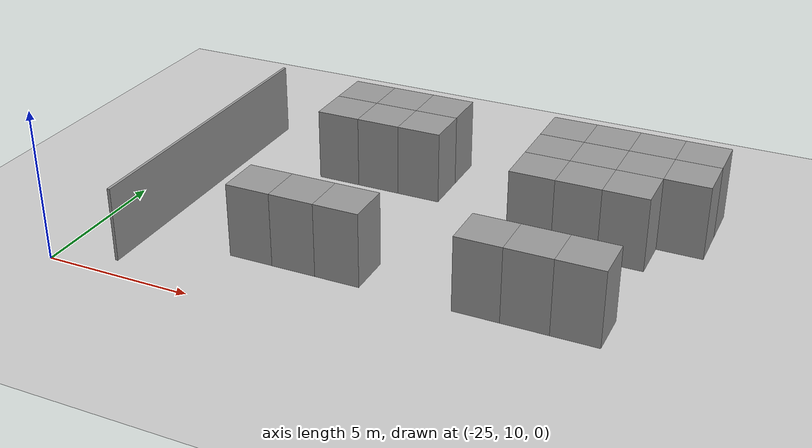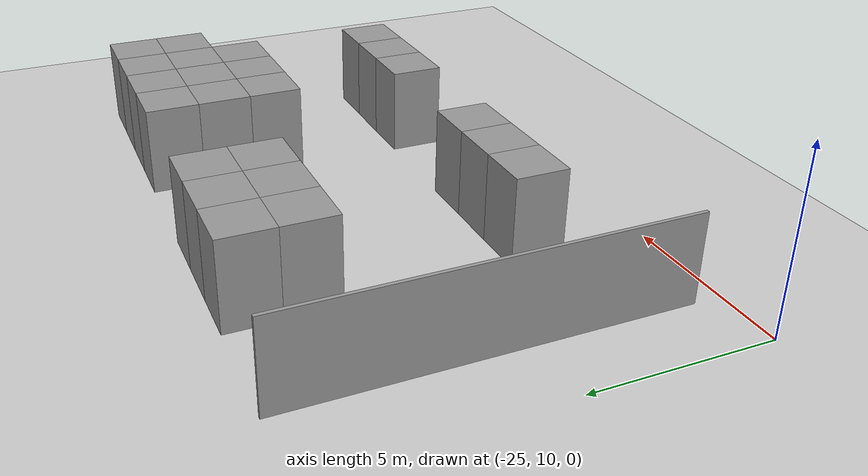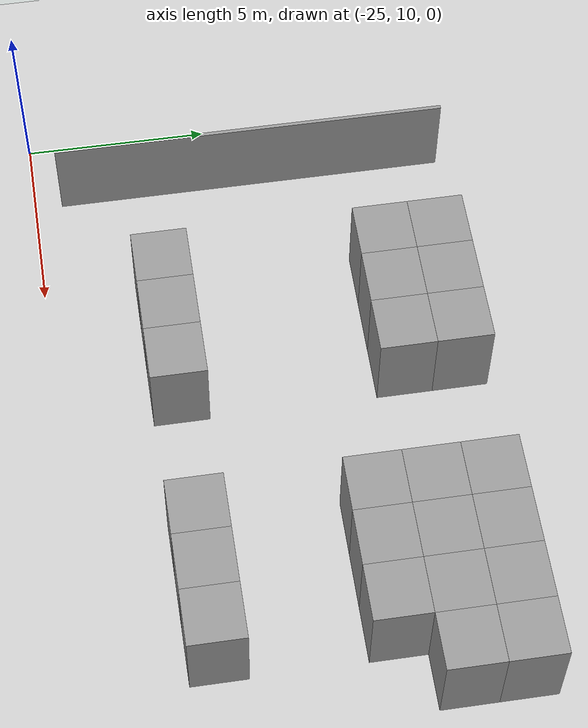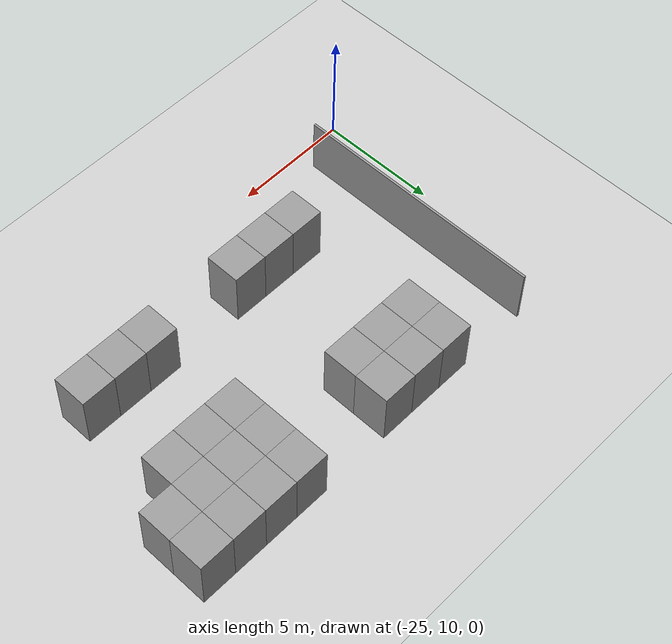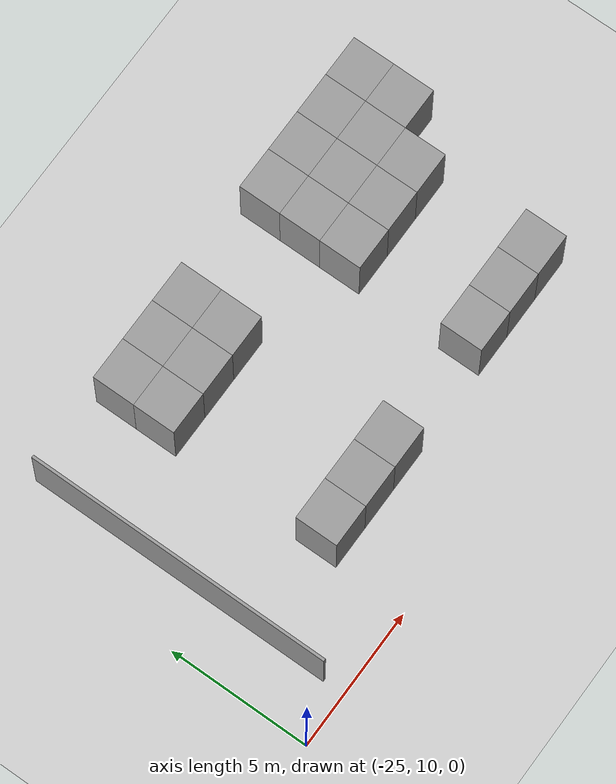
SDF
<sdf version="1.6">
 <world name="default">
  <model name="ground_plane">
   <static>1</static>
   <link name="link">
    <collision name="collision">
     <geometry><plane><normal>0 0 1</normal><size>100 100</size></plane></geometry>
     <surface><friction><ode><mu>100</mu><mu2>50</mu2></ode></friction></surface>
    </collision>
    <visual name="visual">
     <cast_shadows>0</cast_shadows>
     <geometry><plane><normal>0 0 1</normal><size>100 100</size></plane></geometry>
     <material>
      <script><uri>file://media/materials/scripts/gazebo.material</uri><name>Gazebo/Grey</name></script>
     </material>
    </visual>
   </link>
  </model>
  <model name="wall_1.5_1.5_78">
   <link name="Wall_2">
    <inertial>
     <mass>10</mass>
     <inertia><ixx>1</ixx><ixy>0</ixy><ixz>0</ixz><iyy>1</iyy><iyz>0</iyz><izz>1</izz></inertia>
    </inertial>
    <visual name="Wall_2_Visual">
     <pose>0 0 1.25 0 -0 0</pose>
     <geometry><box><size>1.5 1.5 2.5</size></box></geometry>
     <material>
      <script><uri>file://media/materials/scripts/gazebo.material</uri><name>Gazebo/Grey</name></script>
      <ambient>1 1 1 1</ambient>
      <diffuse>0.7 0.7 0.7 1</diffuse>
      <specular>0.01 0.01 0.01 1</specular>
      <emissive>0 0 0 1</emissive>
      <shader type="vertex"><normal_map>__default__</normal_map></shader>
     </material>
    </visual>
    <collision name="Wall_2_Collision">
     <pose>0 0 1.25 0 -0 0</pose>
     <geometry><box><size>1.5 1.5 2.5</size></box></geometry>
     <surface>
      <friction>
       <ode><mu>1</mu><mu2>1</mu2><fdir1>0 0 0</fdir1><slip1>0</slip1><slip2>0</slip2></ode>
       <torsional>
        <coefficient>1</coefficient>
        <patch_radius>0</patch_radius>
        <surface_radius>0</surface_radius>
        <use_patch_radius>1</use_patch_radius>
        <ode><slip>0</slip></ode>
       </torsional>
      </friction>
      <bounce><restitution_coefficient>0</restitution_coefficient><threshold>1e+06</threshold></bounce>
      <contact>
       <collide_without_contact>0</collide_without_contact>
       <collide_without_contact_bitmask>1</collide_without_contact_bitmask>
       <collide_bitmask>1</collide_bitmask>
       <ode>
        <soft_cfm>0</soft_cfm>
        <soft_erp>0.2</soft_erp>
        <kp>1e+13</kp>
        <kd>1</kd>
        <max_vel>0.01</max_vel>
        <min_depth>0</min_depth>
       </ode>
       <bullet>
        <split_impulse>1</split_impulse>
        <split_impulse_penetration_threshold>-0.01</split_impulse_penetration_threshold>
        <soft_cfm>0</soft_cfm>
        <soft_erp>0.2</soft_erp>
        <kp>1e+13</kp>
        <kd>1</kd>
       </bullet>
      </contact>
     </surface>
    </collision>
   </link>
   <static>1</static>
   <pose>-7.25 20.75 0 0 -0 0</pose>
  </model>
  <model name="wall_1.5_1.5_79">
   <link name="Wall_2">
    <inertial>
     <mass>10</mass>
     <inertia><ixx>1</ixx><ixy>0</ixy><ixz>0</ixz><iyy>1</iyy><iyz>0</iyz><izz>1</izz></inertia>
    </inertial>
    <visual name="Wall_2_Visual">
     <pose>0 0 1.25 0 -0 0</pose>
     <geometry><box><size>1.5 1.5 2.5</size></box></geometry>
     <material>
      <script><uri>file://media/materials/scripts/gazebo.material</uri><name>Gazebo/Grey</name></script>
      <ambient>1 1 1 1</ambient>
      <diffuse>0.7 0.7 0.7 1</diffuse>
      <specular>0.01 0.01 0.01 1</specular>
      <emissive>0 0 0 1</emissive>
      <shader type="vertex"><normal_map>__default__</normal_map></shader>
     </material>
    </visual>
    <collision name="Wall_2_Collision">
     <pose>0 0 1.25 0 -0 0</pose>
     <geometry><box><size>1.5 1.5 2.5</size></box></geometry>
     <surface>
      <friction>
       <ode><mu>1</mu><mu2>1</mu2><fdir1>0 0 0</fdir1><slip1>0</slip1><slip2>0</slip2></ode>
       <torsional>
        <coefficient>1</coefficient>
        <patch_radius>0</patch_radius>
        <surface_radius>0</surface_radius>
        <use_patch_radius>1</use_patch_radius>
        <ode><slip>0</slip></ode>
       </torsional>
      </friction>
      <bounce><restitution_coefficient>0</restitution_coefficient><threshold>1e+06</threshold></bounce>
      <contact>
       <collide_without_contact>0</collide_without_contact>
       <collide_without_contact_bitmask>1</collide_without_contact_bitmask>
       <collide_bitmask>1</collide_bitmask>
       <ode>
        <soft_cfm>0</soft_cfm>
        <soft_erp>0.2</soft_erp>
        <kp>1e+13</kp>
        <kd>1</kd>
        <max_vel>0.01</max_vel>
        <min_depth>0</min_depth>
       </ode>
       <bullet>
        <split_impulse>1</split_impulse>
        <split_impulse_penetration_threshold>-0.01</split_impulse_penetration_threshold>
        <soft_cfm>0</soft_cfm>
        <soft_erp>0.2</soft_erp>
        <kp>1e+13</kp>
        <kd>1</kd>
       </bullet>
      </contact>
     </surface>
    </collision>
   </link>
   <static>1</static>
   <pose>-8.75 20.75 0 0 -0 0</pose>
  </model>
  <model name="wall_1.5_1.5_80">
   <link name="Wall_2">
    <inertial>
     <mass>10</mass>
     <inertia><ixx>1</ixx><ixy>0</ixy><ixz>0</ixz><iyy>1</iyy><iyz>0</iyz><izz>1</izz></inertia>
    </inertial>
    <visual name="Wall_2_Visual">
     <pose>0 0 1.25 0 -0 0</pose>
     <geometry><box><size>1.5 1.5 2.5</size></box></geometry>
     <material>
      <script><uri>file://media/materials/scripts/gazebo.material</uri><name>Gazebo/Grey</name></script>
      <ambient>1 1 1 1</ambient>
      <diffuse>0.7 0.7 0.7 1</diffuse>
      <specular>0.01 0.01 0.01 1</specular>
      <emissive>0 0 0 1</emissive>
      <shader type="vertex"><normal_map>__default__</normal_map></shader>
     </material>
    </visual>
    <collision name="Wall_2_Collision">
     <pose>0 0 1.25 0 -0 0</pose>
     <geometry><box><size>1.5 1.5 2.5</size></box></geometry>
     <surface>
      <friction>
       <ode><mu>1</mu><mu2>1</mu2><fdir1>0 0 0</fdir1><slip1>0</slip1><slip2>0</slip2></ode>
       <torsional>
        <coefficient>1</coefficient>
        <patch_radius>0</patch_radius>
        <surface_radius>0</surface_radius>
        <use_patch_radius>1</use_patch_radius>
        <ode><slip>0</slip></ode>
       </torsional>
      </friction>
      <bounce><restitution_coefficient>0</restitution_coefficient><threshold>1e+06</threshold></bounce>
      <contact>
       <collide_without_contact>0</collide_without_contact>
       <collide_without_contact_bitmask>1</collide_without_contact_bitmask>
       <collide_bitmask>1</collide_bitmask>
       <ode>
        <soft_cfm>0</soft_cfm>
        <soft_erp>0.2</soft_erp>
        <kp>1e+13</kp>
        <kd>1</kd>
        <max_vel>0.01</max_vel>
        <min_depth>0</min_depth>
       </ode>
       <bullet>
        <split_impulse>1</split_impulse>
        <split_impulse_penetration_threshold>-0.01</split_impulse_penetration_threshold>
        <soft_cfm>0</soft_cfm>
        <soft_erp>0.2</soft_erp>
        <kp>1e+13</kp>
        <kd>1</kd>
       </bullet>
      </contact>
     </surface>
    </collision>
   </link>
   <static>1</static>
   <pose>-10.25 20.75 0 0 -0 0</pose>
  </model>
  <model name="wall_1.5_1.5_81">
   <link name="Wall_2">
    <inertial>
     <mass>10</mass>
     <inertia><ixx>1</ixx><ixy>0</ixy><ixz>0</ixz><iyy>1</iyy><iyz>0</iyz><izz>1</izz></inertia>
    </inertial>
    <visual name="Wall_2_Visual">
     <pose>0 0 1.25 0 -0 0</pose>
     <geometry><box><size>1.5 1.5 2.5</size></box></geometry>
     <material>
      <script><uri>file://media/materials/scripts/gazebo.material</uri><name>Gazebo/Grey</name></script>
      <ambient>1 1 1 1</ambient>
      <diffuse>0.7 0.7 0.7 1</diffuse>
      <specular>0.01 0.01 0.01 1</specular>
      <emissive>0 0 0 1</emissive>
      <shader type="vertex"><normal_map>__default__</normal_map></shader>
     </material>
    </visual>
    <collision name="Wall_2_Collision">
     <pose>0 0 1.25 0 -0 0</pose>
     <geometry><box><size>1.5 1.5 2.5</size></box></geometry>
     <surface>
      <friction>
       <ode><mu>1</mu><mu2>1</mu2><fdir1>0 0 0</fdir1><slip1>0</slip1><slip2>0</slip2></ode>
       <torsional>
        <coefficient>1</coefficient>
        <patch_radius>0</patch_radius>
        <surface_radius>0</surface_radius>
        <use_patch_radius>1</use_patch_radius>
        <ode><slip>0</slip></ode>
       </torsional>
      </friction>
      <bounce><restitution_coefficient>0</restitution_coefficient><threshold>1e+06</threshold></bounce>
      <contact>
       <collide_without_contact>0</collide_without_contact>
       <collide_without_contact_bitmask>1</collide_without_contact_bitmask>
       <collide_bitmask>1</collide_bitmask>
       <ode>
        <soft_cfm>0</soft_cfm>
        <soft_erp>0.2</soft_erp>
        <kp>1e+13</kp>
        <kd>1</kd>
        <max_vel>0.01</max_vel>
        <min_depth>0</min_depth>
       </ode>
       <bullet>
        <split_impulse>1</split_impulse>
        <split_impulse_penetration_threshold>-0.01</split_impulse_penetration_threshold>
        <soft_cfm>0</soft_cfm>
        <soft_erp>0.2</soft_erp>
        <kp>1e+13</kp>
        <kd>1</kd>
       </bullet>
      </contact>
     </surface>
    </collision>
   </link>
   <static>1</static>
   <pose>-11.75 20.75 0 0 -0 0</pose>
  </model>
  <model name="wall_1.5_1.5_86">
   <link name="Wall_2">
    <inertial>
     <mass>10</mass>
     <inertia><ixx>1</ixx><ixy>0</ixy><ixz>0</ixz><iyy>1</iyy><iyz>0</iyz><izz>1</izz></inertia>
    </inertial>
    <visual name="Wall_2_Visual">
     <pose>0 0 1.25 0 -0 0</pose>
     <geometry><box><size>1.5 1.5 2.5</size></box></geometry>
     <material>
      <script><uri>file://media/materials/scripts/gazebo.material</uri><name>Gazebo/Grey</name></script>
      <ambient>1 1 1 1</ambient>
      <diffuse>0.7 0.7 0.7 1</diffuse>
      <specular>0.01 0.01 0.01 1</specular>
      <emissive>0 0 0 1</emissive>
      <shader type="vertex"><normal_map>__default__</normal_map></shader>
     </material>
    </visual>
    <collision name="Wall_2_Collision">
     <pose>0 0 1.25 0 -0 0</pose>
     <geometry><box><size>1.5 1.5 2.5</size></box></geometry>
     <surface>
      <friction>
       <ode><mu>1</mu><mu2>1</mu2><fdir1>0 0 0</fdir1><slip1>0</slip1><slip2>0</slip2></ode>
       <torsional>
        <coefficient>1</coefficient>
        <patch_radius>0</patch_radius>
        <surface_radius>0</surface_radius>
        <use_patch_radius>1</use_patch_radius>
        <ode><slip>0</slip></ode>
       </torsional>
      </friction>
      <bounce><restitution_coefficient>0</restitution_coefficient><threshold>1e+06</threshold></bounce>
      <contact>
       <collide_without_contact>0</collide_without_contact>
       <collide_without_contact_bitmask>1</collide_without_contact_bitmask>
       <collide_bitmask>1</collide_bitmask>
       <ode>
        <soft_cfm>0</soft_cfm>
        <soft_erp>0.2</soft_erp>
        <kp>1e+13</kp>
        <kd>1</kd>
        <max_vel>0.01</max_vel>
        <min_depth>0</min_depth>
       </ode>
       <bullet>
        <split_impulse>1</split_impulse>
        <split_impulse_penetration_threshold>-0.01</split_impulse_penetration_threshold>
        <soft_cfm>0</soft_cfm>
        <soft_erp>0.2</soft_erp>
        <kp>1e+13</kp>
        <kd>1</kd>
       </bullet>
      </contact>
     </surface>
    </collision>
   </link>
   <static>1</static>
   <pose>-11.75 17.75 0 0 -0 0</pose>
  </model>
  <model name="wall_1.5_1.5_87">
   <link name="Wall_2">
    <inertial>
     <mass>10</mass>
     <inertia><ixx>1</ixx><ixy>0</ixy><ixz>0</ixz><iyy>1</iyy><iyz>0</iyz><izz>1</izz></inertia>
    </inertial>
    <visual name="Wall_2_Visual">
     <pose>0 0 1.25 0 -0 0</pose>
     <geometry><box><size>1.5 1.5 2.5</size></box></geometry>
     <material>
      <script><uri>file://media/materials/scripts/gazebo.material</uri><name>Gazebo/Grey</name></script>
      <ambient>1 1 1 1</ambient>
      <diffuse>0.7 0.7 0.7 1</diffuse>
      <specular>0.01 0.01 0.01 1</specular>
      <emissive>0 0 0 1</emissive>
      <shader type="vertex"><normal_map>__default__</normal_map></shader>
     </material>
    </visual>
    <collision name="Wall_2_Collision">
     <pose>0 0 1.25 0 -0 0</pose>
     <geometry><box><size>1.5 1.5 2.5</size></box></geometry>
     <surface>
      <friction>
       <ode><mu>1</mu><mu2>1</mu2><fdir1>0 0 0</fdir1><slip1>0</slip1><slip2>0</slip2></ode>
       <torsional>
        <coefficient>1</coefficient>
        <patch_radius>0</patch_radius>
        <surface_radius>0</surface_radius>
        <use_patch_radius>1</use_patch_radius>
        <ode><slip>0</slip></ode>
       </torsional>
      </friction>
      <bounce><restitution_coefficient>0</restitution_coefficient><threshold>1e+06</threshold></bounce>
      <contact>
       <collide_without_contact>0</collide_without_contact>
       <collide_without_contact_bitmask>1</collide_without_contact_bitmask>
       <collide_bitmask>1</collide_bitmask>
       <ode>
        <soft_cfm>0</soft_cfm>
        <soft_erp>0.2</soft_erp>
        <kp>1e+13</kp>
        <kd>1</kd>
        <max_vel>0.01</max_vel>
        <min_depth>0</min_depth>
       </ode>
       <bullet>
        <split_impulse>1</split_impulse>
        <split_impulse_penetration_threshold>-0.01</split_impulse_penetration_threshold>
        <soft_cfm>0</soft_cfm>
        <soft_erp>0.2</soft_erp>
        <kp>1e+13</kp>
        <kd>1</kd>
       </bullet>
      </contact>
     </surface>
    </collision>
   </link>
   <static>1</static>
   <pose>-10.25 17.75 0 0 -0 0</pose>
  </model>
  <model name="wall_1.5_1.5_88">
   <link name="Wall_2">
    <inertial>
     <mass>10</mass>
     <inertia><ixx>1</ixx><ixy>0</ixy><ixz>0</ixz><iyy>1</iyy><iyz>0</iyz><izz>1</izz></inertia>
    </inertial>
    <visual name="Wall_2_Visual">
     <pose>0 0 1.25 0 -0 0</pose>
     <geometry><box><size>1.5 1.5 2.5</size></box></geometry>
     <material>
      <script><uri>file://media/materials/scripts/gazebo.material</uri><name>Gazebo/Grey</name></script>
      <ambient>1 1 1 1</ambient>
      <diffuse>0.7 0.7 0.7 1</diffuse>
      <specular>0.01 0.01 0.01 1</specular>
      <emissive>0 0 0 1</emissive>
      <shader type="vertex"><normal_map>__default__</normal_map></shader>
     </material>
    </visual>
    <collision name="Wall_2_Collision">
     <pose>0 0 1.25 0 -0 0</pose>
     <geometry><box><size>1.5 1.5 2.5</size></box></geometry>
     <surface>
      <friction>
       <ode><mu>1</mu><mu2>1</mu2><fdir1>0 0 0</fdir1><slip1>0</slip1><slip2>0</slip2></ode>
       <torsional>
        <coefficient>1</coefficient>
        <patch_radius>0</patch_radius>
        <surface_radius>0</surface_radius>
        <use_patch_radius>1</use_patch_radius>
        <ode><slip>0</slip></ode>
       </torsional>
      </friction>
      <bounce><restitution_coefficient>0</restitution_coefficient><threshold>1e+06</threshold></bounce>
      <contact>
       <collide_without_contact>0</collide_without_contact>
       <collide_without_contact_bitmask>1</collide_without_contact_bitmask>
       <collide_bitmask>1</collide_bitmask>
       <ode>
        <soft_cfm>0</soft_cfm>
        <soft_erp>0.2</soft_erp>
        <kp>1e+13</kp>
        <kd>1</kd>
        <max_vel>0.01</max_vel>
        <min_depth>0</min_depth>
       </ode>
       <bullet>
        <split_impulse>1</split_impulse>
        <split_impulse_penetration_threshold>-0.01</split_impulse_penetration_threshold>
        <soft_cfm>0</soft_cfm>
        <soft_erp>0.2</soft_erp>
        <kp>1e+13</kp>
        <kd>1</kd>
       </bullet>
      </contact>
     </surface>
    </collision>
   </link>
   <static>1</static>
   <pose>-8.75 17.75 0 0 -0 0</pose>
  </model>
  <model name="wall_1.5_1.5_91">
   <link name="Wall_2">
    <inertial>
     <mass>10</mass>
     <inertia><ixx>1</ixx><ixy>0</ixy><ixz>0</ixz><iyy>1</iyy><iyz>0</iyz><izz>1</izz></inertia>
    </inertial>
    <visual name="Wall_2_Visual">
     <pose>0 0 1.25 0 -0 0</pose>
     <geometry><box><size>1.5 1.5 2.5</size></box></geometry>
     <material>
      <script><uri>file://media/materials/scripts/gazebo.material</uri><name>Gazebo/Grey</name></script>
      <ambient>1 1 1 1</ambient>
      <diffuse>0.7 0.7 0.7 1</diffuse>
      <specular>0.01 0.01 0.01 1</specular>
      <emissive>0 0 0 1</emissive>
      <shader type="vertex"><normal_map>__default__</normal_map></shader>
     </material>
    </visual>
    <collision name="Wall_2_Collision">
     <pose>0 0 1.25 0 -0 0</pose>
     <geometry><box><size>1.5 1.5 2.5</size></box></geometry>
     <surface>
      <friction>
       <ode><mu>1</mu><mu2>1</mu2><fdir1>0 0 0</fdir1><slip1>0</slip1><slip2>0</slip2></ode>
       <torsional>
        <coefficient>1</coefficient>
        <patch_radius>0</patch_radius>
        <surface_radius>0</surface_radius>
        <use_patch_radius>1</use_patch_radius>
        <ode><slip>0</slip></ode>
       </torsional>
      </friction>
      <bounce><restitution_coefficient>0</restitution_coefficient><threshold>1e+06</threshold></bounce>
      <contact>
       <collide_without_contact>0</collide_without_contact>
       <collide_without_contact_bitmask>1</collide_without_contact_bitmask>
       <collide_bitmask>1</collide_bitmask>
       <ode>
        <soft_cfm>0</soft_cfm>
        <soft_erp>0.2</soft_erp>
        <kp>1e+13</kp>
        <kd>1</kd>
        <max_vel>0.01</max_vel>
        <min_depth>0</min_depth>
       </ode>
       <bullet>
        <split_impulse>1</split_impulse>
        <split_impulse_penetration_threshold>-0.01</split_impulse_penetration_threshold>
        <soft_cfm>0</soft_cfm>
        <soft_erp>0.2</soft_erp>
        <kp>1e+13</kp>
        <kd>1</kd>
       </bullet>
      </contact>
     </surface>
    </collision>
   </link>
   <static>1</static>
   <pose>-7.25 19.25 0 0 -0 0</pose>
  </model>
  <model name="wall_1.5_1.5_92">
   <link name="Wall_2">
    <inertial>
     <mass>10</mass>
     <inertia><ixx>1</ixx><ixy>0</ixy><ixz>0</ixz><iyy>1</iyy><iyz>0</iyz><izz>1</izz></inertia>
    </inertial>
    <visual name="Wall_2_Visual">
     <pose>0 0 1.25 0 -0 0</pose>
     <geometry><box><size>1.5 1.5 2.5</size></box></geometry>
     <material>
      <script><uri>file://media/materials/scripts/gazebo.material</uri><name>Gazebo/Grey</name></script>
      <ambient>1 1 1 1</ambient>
      <diffuse>0.7 0.7 0.7 1</diffuse>
      <specular>0.01 0.01 0.01 1</specular>
      <emissive>0 0 0 1</emissive>
      <shader type="vertex"><normal_map>__default__</normal_map></shader>
     </material>
    </visual>
    <collision name="Wall_2_Collision">
     <pose>0 0 1.25 0 -0 0</pose>
     <geometry><box><size>1.5 1.5 2.5</size></box></geometry>
     <surface>
      <friction>
       <ode><mu>1</mu><mu2>1</mu2><fdir1>0 0 0</fdir1><slip1>0</slip1><slip2>0</slip2></ode>
       <torsional>
        <coefficient>1</coefficient>
        <patch_radius>0</patch_radius>
        <surface_radius>0</surface_radius>
        <use_patch_radius>1</use_patch_radius>
        <ode><slip>0</slip></ode>
       </torsional>
      </friction>
      <bounce><restitution_coefficient>0</restitution_coefficient><threshold>1e+06</threshold></bounce>
      <contact>
       <collide_without_contact>0</collide_without_contact>
       <collide_without_contact_bitmask>1</collide_without_contact_bitmask>
       <collide_bitmask>1</collide_bitmask>
       <ode>
        <soft_cfm>0</soft_cfm>
        <soft_erp>0.2</soft_erp>
        <kp>1e+13</kp>
        <kd>1</kd>
        <max_vel>0.01</max_vel>
        <min_depth>0</min_depth>
       </ode>
       <bullet>
        <split_impulse>1</split_impulse>
        <split_impulse_penetration_threshold>-0.01</split_impulse_penetration_threshold>
        <soft_cfm>0</soft_cfm>
        <soft_erp>0.2</soft_erp>
        <kp>1e+13</kp>
        <kd>1</kd>
       </bullet>
      </contact>
     </surface>
    </collision>
   </link>
   <static>1</static>
   <pose>-8.75 19.25 0 0 -0 0</pose>
  </model>
  <model name="wall_1.5_1.5_93">
   <link name="Wall_2">
    <inertial>
     <mass>10</mass>
     <inertia><ixx>1</ixx><ixy>0</ixy><ixz>0</ixz><iyy>1</iyy><iyz>0</iyz><izz>1</izz></inertia>
    </inertial>
    <visual name="Wall_2_Visual">
     <pose>0 0 1.25 0 -0 0</pose>
     <geometry><box><size>1.5 1.5 2.5</size></box></geometry>
     <material>
      <script><uri>file://media/materials/scripts/gazebo.material</uri><name>Gazebo/Grey</name></script>
      <ambient>1 1 1 1</ambient>
      <diffuse>0.7 0.7 0.7 1</diffuse>
      <specular>0.01 0.01 0.01 1</specular>
      <emissive>0 0 0 1</emissive>
      <shader type="vertex"><normal_map>__default__</normal_map></shader>
     </material>
    </visual>
    <collision name="Wall_2_Collision">
     <pose>0 0 1.25 0 -0 0</pose>
     <geometry><box><size>1.5 1.5 2.5</size></box></geometry>
     <surface>
      <friction>
       <ode><mu>1</mu><mu2>1</mu2><fdir1>0 0 0</fdir1><slip1>0</slip1><slip2>0</slip2></ode>
       <torsional>
        <coefficient>1</coefficient>
        <patch_radius>0</patch_radius>
        <surface_radius>0</surface_radius>
        <use_patch_radius>1</use_patch_radius>
        <ode><slip>0</slip></ode>
       </torsional>
      </friction>
      <bounce><restitution_coefficient>0</restitution_coefficient><threshold>1e+06</threshold></bounce>
      <contact>
       <collide_without_contact>0</collide_without_contact>
       <collide_without_contact_bitmask>1</collide_without_contact_bitmask>
       <collide_bitmask>1</collide_bitmask>
       <ode>
        <soft_cfm>0</soft_cfm>
        <soft_erp>0.2</soft_erp>
        <kp>1e+13</kp>
        <kd>1</kd>
        <max_vel>0.01</max_vel>
        <min_depth>0</min_depth>
       </ode>
       <bullet>
        <split_impulse>1</split_impulse>
        <split_impulse_penetration_threshold>-0.01</split_impulse_penetration_threshold>
        <soft_cfm>0</soft_cfm>
        <soft_erp>0.2</soft_erp>
        <kp>1e+13</kp>
        <kd>1</kd>
       </bullet>
      </contact>
     </surface>
    </collision>
   </link>
   <static>1</static>
   <pose>-10.25 19.25 0 0 -0 0</pose>
  </model>
  <model name="wall_1.5_1.5_94">
   <link name="Wall_2">
    <inertial>
     <mass>10</mass>
     <inertia><ixx>1</ixx><ixy>0</ixy><ixz>0</ixz><iyy>1</iyy><iyz>0</iyz><izz>1</izz></inertia>
    </inertial>
    <visual name="Wall_2_Visual">
     <pose>0 0 1.25 0 -0 0</pose>
     <geometry><box><size>1.5 1.5 2.5</size></box></geometry>
     <material>
      <script><uri>file://media/materials/scripts/gazebo.material</uri><name>Gazebo/Grey</name></script>
      <ambient>1 1 1 1</ambient>
      <diffuse>0.7 0.7 0.7 1</diffuse>
      <specular>0.01 0.01 0.01 1</specular>
      <emissive>0 0 0 1</emissive>
      <shader type="vertex"><normal_map>__default__</normal_map></shader>
     </material>
    </visual>
    <collision name="Wall_2_Collision">
     <pose>0 0 1.25 0 -0 0</pose>
     <geometry><box><size>1.5 1.5 2.5</size></box></geometry>
     <surface>
      <friction>
       <ode><mu>1</mu><mu2>1</mu2><fdir1>0 0 0</fdir1><slip1>0</slip1><slip2>0</slip2></ode>
       <torsional>
        <coefficient>1</coefficient>
        <patch_radius>0</patch_radius>
        <surface_radius>0</surface_radius>
        <use_patch_radius>1</use_patch_radius>
        <ode><slip>0</slip></ode>
       </torsional>
      </friction>
      <bounce><restitution_coefficient>0</restitution_coefficient><threshold>1e+06</threshold></bounce>
      <contact>
       <collide_without_contact>0</collide_without_contact>
       <collide_without_contact_bitmask>1</collide_without_contact_bitmask>
       <collide_bitmask>1</collide_bitmask>
       <ode>
        <soft_cfm>0</soft_cfm>
        <soft_erp>0.2</soft_erp>
        <kp>1e+13</kp>
        <kd>1</kd>
        <max_vel>0.01</max_vel>
        <min_depth>0</min_depth>
       </ode>
       <bullet>
        <split_impulse>1</split_impulse>
        <split_impulse_penetration_threshold>-0.01</split_impulse_penetration_threshold>
        <soft_cfm>0</soft_cfm>
        <soft_erp>0.2</soft_erp>
        <kp>1e+13</kp>
        <kd>1</kd>
       </bullet>
      </contact>
     </surface>
    </collision>
   </link>
   <static>1</static>
   <pose>-11.75 19.25 0 0 -0 0</pose>
  </model>
  <model name="wall_1.5_1.5_110">
   <link name="Wall_2">
    <inertial>
     <mass>10</mass>
     <inertia><ixx>1</ixx><ixy>0</ixy><ixz>0</ixz><iyy>1</iyy><iyz>0</iyz><izz>1</izz></inertia>
    </inertial>
    <visual name="Wall_2_Visual">
     <pose>0 0 1.25 0 -0 0</pose>
     <geometry><box><size>1.5 1.5 2.5</size></box></geometry>
     <material>
      <script><uri>file://media/materials/scripts/gazebo.material</uri><name>Gazebo/Grey</name></script>
      <ambient>1 1 1 1</ambient>
      <diffuse>0.7 0.7 0.7 1</diffuse>
      <specular>0.01 0.01 0.01 1</specular>
      <emissive>0 0 0 1</emissive>
      <shader type="vertex"><normal_map>__default__</normal_map></shader>
     </material>
    </visual>
    <collision name="Wall_2_Collision">
     <pose>0 0 1.25 0 -0 0</pose>
     <geometry><box><size>1.5 1.5 2.5</size></box></geometry>
     <surface>
      <friction>
       <ode><mu>1</mu><mu2>1</mu2><fdir1>0 0 0</fdir1><slip1>0</slip1><slip2>0</slip2></ode>
       <torsional>
        <coefficient>1</coefficient>
        <patch_radius>0</patch_radius>
        <surface_radius>0</surface_radius>
        <use_patch_radius>1</use_patch_radius>
        <ode><slip>0</slip></ode>
       </torsional>
      </friction>
      <bounce><restitution_coefficient>0</restitution_coefficient><threshold>1e+06</threshold></bounce>
      <contact>
       <collide_without_contact>0</collide_without_contact>
       <collide_without_contact_bitmask>1</collide_without_contact_bitmask>
       <collide_bitmask>1</collide_bitmask>
       <ode>
        <soft_cfm>0</soft_cfm>
        <soft_erp>0.2</soft_erp>
        <kp>1e+13</kp>
        <kd>1</kd>
        <max_vel>0.01</max_vel>
        <min_depth>0</min_depth>
       </ode>
       <bullet>
        <split_impulse>1</split_impulse>
        <split_impulse_penetration_threshold>-0.01</split_impulse_penetration_threshold>
        <soft_cfm>0</soft_cfm>
        <soft_erp>0.2</soft_erp>
        <kp>1e+13</kp>
        <kd>1</kd>
       </bullet>
      </contact>
     </surface>
    </collision>
   </link>
   <static>1</static>
   <pose>-8.75 13.25 0 0 -0 0</pose>
  </model>
  <model name="wall_1.5_1.5_111">
   <link name="Wall_2">
    <inertial>
     <mass>10</mass>
     <inertia><ixx>1</ixx><ixy>0</ixy><ixz>0</ixz><iyy>1</iyy><iyz>0</iyz><izz>1</izz></inertia>
    </inertial>
    <visual name="Wall_2_Visual">
     <pose>0 0 1.25 0 -0 0</pose>
     <geometry><box><size>1.5 1.5 2.5</size></box></geometry>
     <material>
      <script><uri>file://media/materials/scripts/gazebo.material</uri><name>Gazebo/Grey</name></script>
      <ambient>1 1 1 1</ambient>
      <diffuse>0.7 0.7 0.7 1</diffuse>
      <specular>0.01 0.01 0.01 1</specular>
      <emissive>0 0 0 1</emissive>
      <shader type="vertex"><normal_map>__default__</normal_map></shader>
     </material>
    </visual>
    <collision name="Wall_2_Collision">
     <pose>0 0 1.25 0 -0 0</pose>
     <geometry><box><size>1.5 1.5 2.5</size></box></geometry>
     <surface>
      <friction>
       <ode><mu>1</mu><mu2>1</mu2><fdir1>0 0 0</fdir1><slip1>0</slip1><slip2>0</slip2></ode>
       <torsional>
        <coefficient>1</coefficient>
        <patch_radius>0</patch_radius>
        <surface_radius>0</surface_radius>
        <use_patch_radius>1</use_patch_radius>
        <ode><slip>0</slip></ode>
       </torsional>
      </friction>
      <bounce><restitution_coefficient>0</restitution_coefficient><threshold>1e+06</threshold></bounce>
      <contact>
       <collide_without_contact>0</collide_without_contact>
       <collide_without_contact_bitmask>1</collide_without_contact_bitmask>
       <collide_bitmask>1</collide_bitmask>
       <ode>
        <soft_cfm>0</soft_cfm>
        <soft_erp>0.2</soft_erp>
        <kp>1e+13</kp>
        <kd>1</kd>
        <max_vel>0.01</max_vel>
        <min_depth>0</min_depth>
       </ode>
       <bullet>
        <split_impulse>1</split_impulse>
        <split_impulse_penetration_threshold>-0.01</split_impulse_penetration_threshold>
        <soft_cfm>0</soft_cfm>
        <soft_erp>0.2</soft_erp>
        <kp>1e+13</kp>
        <kd>1</kd>
       </bullet>
      </contact>
     </surface>
    </collision>
   </link>
   <static>1</static>
   <pose>-10.25 13.25 0 0 -0 0</pose>
  </model>
  <model name="wall_1.5_1.5_112">
   <link name="Wall_2">
    <inertial>
     <mass>10</mass>
     <inertia><ixx>1</ixx><ixy>0</ixy><ixz>0</ixz><iyy>1</iyy><iyz>0</iyz><izz>1</izz></inertia>
    </inertial>
    <visual name="Wall_2_Visual">
     <pose>0 0 1.25 0 -0 0</pose>
     <geometry><box><size>1.5 1.5 2.5</size></box></geometry>
     <material>
      <script><uri>file://media/materials/scripts/gazebo.material</uri><name>Gazebo/Grey</name></script>
      <ambient>1 1 1 1</ambient>
      <diffuse>0.7 0.7 0.7 1</diffuse>
      <specular>0.01 0.01 0.01 1</specular>
      <emissive>0 0 0 1</emissive>
      <shader type="vertex"><normal_map>__default__</normal_map></shader>
     </material>
    </visual>
    <collision name="Wall_2_Collision">
     <pose>0 0 1.25 0 -0 0</pose>
     <geometry><box><size>1.5 1.5 2.5</size></box></geometry>
     <surface>
      <friction>
       <ode><mu>1</mu><mu2>1</mu2><fdir1>0 0 0</fdir1><slip1>0</slip1><slip2>0</slip2></ode>
       <torsional>
        <coefficient>1</coefficient>
        <patch_radius>0</patch_radius>
        <surface_radius>0</surface_radius>
        <use_patch_radius>1</use_patch_radius>
        <ode><slip>0</slip></ode>
       </torsional>
      </friction>
      <bounce><restitution_coefficient>0</restitution_coefficient><threshold>1e+06</threshold></bounce>
      <contact>
       <collide_without_contact>0</collide_without_contact>
       <collide_without_contact_bitmask>1</collide_without_contact_bitmask>
       <collide_bitmask>1</collide_bitmask>
       <ode>
        <soft_cfm>0</soft_cfm>
        <soft_erp>0.2</soft_erp>
        <kp>1e+13</kp>
        <kd>1</kd>
        <max_vel>0.01</max_vel>
        <min_depth>0</min_depth>
       </ode>
       <bullet>
        <split_impulse>1</split_impulse>
        <split_impulse_penetration_threshold>-0.01</split_impulse_penetration_threshold>
        <soft_cfm>0</soft_cfm>
        <soft_erp>0.2</soft_erp>
        <kp>1e+13</kp>
        <kd>1</kd>
       </bullet>
      </contact>
     </surface>
    </collision>
   </link>
   <static>1</static>
   <pose>-11.75 13.25 0 0 -0 0</pose>
  </model>
  <model name="wall_1.5_1.5_126">
   <link name="Wall_2">
    <inertial>
     <mass>10</mass>
     <inertia><ixx>1</ixx><ixy>0</ixy><ixz>0</ixz><iyy>1</iyy><iyz>0</iyz><izz>1</izz></inertia>
    </inertial>
    <visual name="Wall_2_Visual">
     <pose>0 0 1.25 0 -0 0</pose>
     <geometry><box><size>1.5 1.5 2.5</size></box></geometry>
     <material>
      <script><uri>file://media/materials/scripts/gazebo.material</uri><name>Gazebo/Grey</name></script>
      <ambient>1 1 1 1</ambient>
      <diffuse>0.7 0.7 0.7 1</diffuse>
      <specular>0.01 0.01 0.01 1</specular>
      <emissive>0 0 0 1</emissive>
      <shader type="vertex"><normal_map>__default__</normal_map></shader>
     </material>
    </visual>
    <collision name="Wall_2_Collision">
     <pose>0 0 1.25 0 -0 0</pose>
     <geometry><box><size>1.5 1.5 2.5</size></box></geometry>
     <surface>
      <friction>
       <ode><mu>1</mu><mu2>1</mu2><fdir1>0 0 0</fdir1><slip1>0</slip1><slip2>0</slip2></ode>
       <torsional>
        <coefficient>1</coefficient>
        <patch_radius>0</patch_radius>
        <surface_radius>0</surface_radius>
        <use_patch_radius>1</use_patch_radius>
        <ode><slip>0</slip></ode>
       </torsional>
      </friction>
      <bounce><restitution_coefficient>0</restitution_coefficient><threshold>1e+06</threshold></bounce>
      <contact>
       <collide_without_contact>0</collide_without_contact>
       <collide_without_contact_bitmask>1</collide_without_contact_bitmask>
       <collide_bitmask>1</collide_bitmask>
       <ode>
        <soft_cfm>0</soft_cfm>
        <soft_erp>0.2</soft_erp>
        <kp>1e+13</kp>
        <kd>1</kd>
        <max_vel>0.01</max_vel>
        <min_depth>0</min_depth>
       </ode>
       <bullet>
        <split_impulse>1</split_impulse>
        <split_impulse_penetration_threshold>-0.01</split_impulse_penetration_threshold>
        <soft_cfm>0</soft_cfm>
        <soft_erp>0.2</soft_erp>
        <kp>1e+13</kp>
        <kd>1</kd>
       </bullet>
      </contact>
     </surface>
    </collision>
   </link>
   <static>1</static>
   <pose>-16.25 13.25 0 0 -0 0</pose>
  </model>
  <model name="wall_1.5_1.5_129">
   <link name="Wall_2">
    <inertial>
     <mass>10</mass>
     <inertia><ixx>1</ixx><ixy>0</ixy><ixz>0</ixz><iyy>1</iyy><iyz>0</iyz><izz>1</izz></inertia>
    </inertial>
    <visual name="Wall_2_Visual">
     <pose>0 0 1.25 0 -0 0</pose>
     <geometry><box><size>1.5 1.5 2.5</size></box></geometry>
     <material>
      <script><uri>file://media/materials/scripts/gazebo.material</uri><name>Gazebo/Grey</name></script>
      <ambient>1 1 1 1</ambient>
      <diffuse>0.7 0.7 0.7 1</diffuse>
      <specular>0.01 0.01 0.01 1</specular>
      <emissive>0 0 0 1</emissive>
      <shader type="vertex"><normal_map>__default__</normal_map></shader>
     </material>
    </visual>
    <collision name="Wall_2_Collision">
     <pose>0 0 1.25 0 -0 0</pose>
     <geometry><box><size>1.5 1.5 2.5</size></box></geometry>
     <surface>
      <friction>
       <ode><mu>1</mu><mu2>1</mu2><fdir1>0 0 0</fdir1><slip1>0</slip1><slip2>0</slip2></ode>
       <torsional>
        <coefficient>1</coefficient>
        <patch_radius>0</patch_radius>
        <surface_radius>0</surface_radius>
        <use_patch_radius>1</use_patch_radius>
        <ode><slip>0</slip></ode>
       </torsional>
      </friction>
      <bounce><restitution_coefficient>0</restitution_coefficient><threshold>1e+06</threshold></bounce>
      <contact>
       <collide_without_contact>0</collide_without_contact>
       <collide_without_contact_bitmask>1</collide_without_contact_bitmask>
       <collide_bitmask>1</collide_bitmask>
       <ode>
        <soft_cfm>0</soft_cfm>
        <soft_erp>0.2</soft_erp>
        <kp>1e+13</kp>
        <kd>1</kd>
        <max_vel>0.01</max_vel>
        <min_depth>0</min_depth>
       </ode>
       <bullet>
        <split_impulse>1</split_impulse>
        <split_impulse_penetration_threshold>-0.01</split_impulse_penetration_threshold>
        <soft_cfm>0</soft_cfm>
        <soft_erp>0.2</soft_erp>
        <kp>1e+13</kp>
        <kd>1</kd>
       </bullet>
      </contact>
     </surface>
    </collision>
   </link>
   <static>1</static>
   <pose>-17.75 13.25 0 0 -0 0</pose>
  </model>
  <model name="wall_1.5_1.5_130">
   <link name="Wall_2">
    <inertial>
     <mass>10</mass>
     <inertia><ixx>1</ixx><ixy>0</ixy><ixz>0</ixz><iyy>1</iyy><iyz>0</iyz><izz>1</izz></inertia>
    </inertial>
    <visual name="Wall_2_Visual">
     <pose>0 0 1.25 0 -0 0</pose>
     <geometry><box><size>1.5 1.5 2.5</size></box></geometry>
     <material>
      <script><uri>file://media/materials/scripts/gazebo.material</uri><name>Gazebo/Grey</name></script>
      <ambient>1 1 1 1</ambient>
      <diffuse>0.7 0.7 0.7 1</diffuse>
      <specular>0.01 0.01 0.01 1</specular>
      <emissive>0 0 0 1</emissive>
      <shader type="vertex"><normal_map>__default__</normal_map></shader>
     </material>
    </visual>
    <collision name="Wall_2_Collision">
     <pose>0 0 1.25 0 -0 0</pose>
     <geometry><box><size>1.5 1.5 2.5</size></box></geometry>
     <surface>
      <friction>
       <ode><mu>1</mu><mu2>1</mu2><fdir1>0 0 0</fdir1><slip1>0</slip1><slip2>0</slip2></ode>
       <torsional>
        <coefficient>1</coefficient>
        <patch_radius>0</patch_radius>
        <surface_radius>0</surface_radius>
        <use_patch_radius>1</use_patch_radius>
        <ode><slip>0</slip></ode>
       </torsional>
      </friction>
      <bounce><restitution_coefficient>0</restitution_coefficient><threshold>1e+06</threshold></bounce>
      <contact>
       <collide_without_contact>0</collide_without_contact>
       <collide_without_contact_bitmask>1</collide_without_contact_bitmask>
       <collide_bitmask>1</collide_bitmask>
       <ode>
        <soft_cfm>0</soft_cfm>
        <soft_erp>0.2</soft_erp>
        <kp>1e+13</kp>
        <kd>1</kd>
        <max_vel>0.01</max_vel>
        <min_depth>0</min_depth>
       </ode>
       <bullet>
        <split_impulse>1</split_impulse>
        <split_impulse_penetration_threshold>-0.01</split_impulse_penetration_threshold>
        <soft_cfm>0</soft_cfm>
        <soft_erp>0.2</soft_erp>
        <kp>1e+13</kp>
        <kd>1</kd>
       </bullet>
      </contact>
     </surface>
    </collision>
   </link>
   <static>1</static>
   <pose>-19.25 13.25 0 0 -0 0</pose>
  </model>
  <model name="wall_1.5_1.5_131">
   <link name="Wall_2">
    <inertial>
     <mass>10</mass>
     <inertia><ixx>1</ixx><ixy>0</ixy><ixz>0</ixz><iyy>1</iyy><iyz>0</iyz><izz>1</izz></inertia>
    </inertial>
    <visual name="Wall_2_Visual">
     <pose>0 0 1.25 0 -0 0</pose>
     <geometry><box><size>1.5 1.5 2.5</size></box></geometry>
     <material>
      <script><uri>file://media/materials/scripts/gazebo.material</uri><name>Gazebo/Grey</name></script>
      <ambient>1 1 1 1</ambient>
      <diffuse>0.7 0.7 0.7 1</diffuse>
      <specular>0.01 0.01 0.01 1</specular>
      <emissive>0 0 0 1</emissive>
      <shader type="vertex"><normal_map>__default__</normal_map></shader>
     </material>
    </visual>
    <collision name="Wall_2_Collision">
     <pose>0 0 1.25 0 -0 0</pose>
     <geometry><box><size>1.5 1.5 2.5</size></box></geometry>
     <surface>
      <friction>
       <ode><mu>1</mu><mu2>1</mu2><fdir1>0 0 0</fdir1><slip1>0</slip1><slip2>0</slip2></ode>
       <torsional>
        <coefficient>1</coefficient>
        <patch_radius>0</patch_radius>
        <surface_radius>0</surface_radius>
        <use_patch_radius>1</use_patch_radius>
        <ode><slip>0</slip></ode>
       </torsional>
      </friction>
      <bounce><restitution_coefficient>0</restitution_coefficient><threshold>1e+06</threshold></bounce>
      <contact>
       <collide_without_contact>0</collide_without_contact>
       <collide_without_contact_bitmask>1</collide_without_contact_bitmask>
       <collide_bitmask>1</collide_bitmask>
       <ode>
        <soft_cfm>0</soft_cfm>
        <soft_erp>0.2</soft_erp>
        <kp>1e+13</kp>
        <kd>1</kd>
        <max_vel>0.01</max_vel>
        <min_depth>0</min_depth>
       </ode>
       <bullet>
        <split_impulse>1</split_impulse>
        <split_impulse_penetration_threshold>-0.01</split_impulse_penetration_threshold>
        <soft_cfm>0</soft_cfm>
        <soft_erp>0.2</soft_erp>
        <kp>1e+13</kp>
        <kd>1</kd>
       </bullet>
      </contact>
     </surface>
    </collision>
   </link>
   <static>1</static>
   <pose>-16.25 20.75 0 0 -0 0</pose>
  </model>
  <model name="wall_1.5_1.5_132">
   <link name="Wall_2">
    <inertial>
     <mass>10</mass>
     <inertia><ixx>1</ixx><ixy>0</ixy><ixz>0</ixz><iyy>1</iyy><iyz>0</iyz><izz>1</izz></inertia>
    </inertial>
    <visual name="Wall_2_Visual">
     <pose>0 0 1.25 0 -0 0</pose>
     <geometry><box><size>1.5 1.5 2.5</size></box></geometry>
     <material>
      <script><uri>file://media/materials/scripts/gazebo.material</uri><name>Gazebo/Grey</name></script>
      <ambient>1 1 1 1</ambient>
      <diffuse>0.7 0.7 0.7 1</diffuse>
      <specular>0.01 0.01 0.01 1</specular>
      <emissive>0 0 0 1</emissive>
      <shader type="vertex"><normal_map>__default__</normal_map></shader>
     </material>
    </visual>
    <collision name="Wall_2_Collision">
     <pose>0 0 1.25 0 -0 0</pose>
     <geometry><box><size>1.5 1.5 2.5</size></box></geometry>
     <surface>
      <friction>
       <ode><mu>1</mu><mu2>1</mu2><fdir1>0 0 0</fdir1><slip1>0</slip1><slip2>0</slip2></ode>
       <torsional>
        <coefficient>1</coefficient>
        <patch_radius>0</patch_radius>
        <surface_radius>0</surface_radius>
        <use_patch_radius>1</use_patch_radius>
        <ode><slip>0</slip></ode>
       </torsional>
      </friction>
      <bounce><restitution_coefficient>0</restitution_coefficient><threshold>1e+06</threshold></bounce>
      <contact>
       <collide_without_contact>0</collide_without_contact>
       <collide_without_contact_bitmask>1</collide_without_contact_bitmask>
       <collide_bitmask>1</collide_bitmask>
       <ode>
        <soft_cfm>0</soft_cfm>
        <soft_erp>0.2</soft_erp>
        <kp>1e+13</kp>
        <kd>1</kd>
        <max_vel>0.01</max_vel>
        <min_depth>0</min_depth>
       </ode>
       <bullet>
        <split_impulse>1</split_impulse>
        <split_impulse_penetration_threshold>-0.01</split_impulse_penetration_threshold>
        <soft_cfm>0</soft_cfm>
        <soft_erp>0.2</soft_erp>
        <kp>1e+13</kp>
        <kd>1</kd>
       </bullet>
      </contact>
     </surface>
    </collision>
   </link>
   <static>1</static>
   <pose>-16.25 19.25 0 0 -0 0</pose>
  </model>
  <model name="wall_1.5_1.5_133">
   <link name="Wall_2">
    <inertial>
     <mass>10</mass>
     <inertia><ixx>1</ixx><ixy>0</ixy><ixz>0</ixz><iyy>1</iyy><iyz>0</iyz><izz>1</izz></inertia>
    </inertial>
    <visual name="Wall_2_Visual">
     <pose>0 0 1.25 0 -0 0</pose>
     <geometry><box><size>1.5 1.5 2.5</size></box></geometry>
     <material>
      <script><uri>file://media/materials/scripts/gazebo.material</uri><name>Gazebo/Grey</name></script>
      <ambient>1 1 1 1</ambient>
      <diffuse>0.7 0.7 0.7 1</diffuse>
      <specular>0.01 0.01 0.01 1</specular>
      <emissive>0 0 0 1</emissive>
      <shader type="vertex"><normal_map>__default__</normal_map></shader>
     </material>
    </visual>
    <collision name="Wall_2_Collision">
     <pose>0 0 1.25 0 -0 0</pose>
     <geometry><box><size>1.5 1.5 2.5</size></box></geometry>
     <surface>
      <friction>
       <ode><mu>1</mu><mu2>1</mu2><fdir1>0 0 0</fdir1><slip1>0</slip1><slip2>0</slip2></ode>
       <torsional>
        <coefficient>1</coefficient>
        <patch_radius>0</patch_radius>
        <surface_radius>0</surface_radius>
        <use_patch_radius>1</use_patch_radius>
        <ode><slip>0</slip></ode>
       </torsional>
      </friction>
      <bounce><restitution_coefficient>0</restitution_coefficient><threshold>1e+06</threshold></bounce>
      <contact>
       <collide_without_contact>0</collide_without_contact>
       <collide_without_contact_bitmask>1</collide_without_contact_bitmask>
       <collide_bitmask>1</collide_bitmask>
       <ode>
        <soft_cfm>0</soft_cfm>
        <soft_erp>0.2</soft_erp>
        <kp>1e+13</kp>
        <kd>1</kd>
        <max_vel>0.01</max_vel>
        <min_depth>0</min_depth>
       </ode>
       <bullet>
        <split_impulse>1</split_impulse>
        <split_impulse_penetration_threshold>-0.01</split_impulse_penetration_threshold>
        <soft_cfm>0</soft_cfm>
        <soft_erp>0.2</soft_erp>
        <kp>1e+13</kp>
        <kd>1</kd>
       </bullet>
      </contact>
     </surface>
    </collision>
   </link>
   <static>1</static>
   <pose>-17.75 19.25 0 0 -0 0</pose>
  </model>
  <model name="wall_1.5_1.5_134">
   <link name="Wall_2">
    <inertial>
     <mass>10</mass>
     <inertia><ixx>1</ixx><ixy>0</ixy><ixz>0</ixz><iyy>1</iyy><iyz>0</iyz><izz>1</izz></inertia>
    </inertial>
    <visual name="Wall_2_Visual">
     <pose>0 0 1.25 0 -0 0</pose>
     <geometry><box><size>1.5 1.5 2.5</size></box></geometry>
     <material>
      <script><uri>file://media/materials/scripts/gazebo.material</uri><name>Gazebo/Grey</name></script>
      <ambient>1 1 1 1</ambient>
      <diffuse>0.7 0.7 0.7 1</diffuse>
      <specular>0.01 0.01 0.01 1</specular>
      <emissive>0 0 0 1</emissive>
      <shader type="vertex"><normal_map>__default__</normal_map></shader>
     </material>
    </visual>
    <collision name="Wall_2_Collision">
     <pose>0 0 1.25 0 -0 0</pose>
     <geometry><box><size>1.5 1.5 2.5</size></box></geometry>
     <surface>
      <friction>
       <ode><mu>1</mu><mu2>1</mu2><fdir1>0 0 0</fdir1><slip1>0</slip1><slip2>0</slip2></ode>
       <torsional>
        <coefficient>1</coefficient>
        <patch_radius>0</patch_radius>
        <surface_radius>0</surface_radius>
        <use_patch_radius>1</use_patch_radius>
        <ode><slip>0</slip></ode>
       </torsional>
      </friction>
      <bounce><restitution_coefficient>0</restitution_coefficient><threshold>1e+06</threshold></bounce>
      <contact>
       <collide_without_contact>0</collide_without_contact>
       <collide_without_contact_bitmask>1</collide_without_contact_bitmask>
       <collide_bitmask>1</collide_bitmask>
       <ode>
        <soft_cfm>0</soft_cfm>
        <soft_erp>0.2</soft_erp>
        <kp>1e+13</kp>
        <kd>1</kd>
        <max_vel>0.01</max_vel>
        <min_depth>0</min_depth>
       </ode>
       <bullet>
        <split_impulse>1</split_impulse>
        <split_impulse_penetration_threshold>-0.01</split_impulse_penetration_threshold>
        <soft_cfm>0</soft_cfm>
        <soft_erp>0.2</soft_erp>
        <kp>1e+13</kp>
        <kd>1</kd>
       </bullet>
      </contact>
     </surface>
    </collision>
   </link>
   <static>1</static>
   <pose>-17.75 20.75 0 0 -0 0</pose>
  </model>
  <model name="wall_1.5_1.5_135">
   <link name="Wall_2">
    <inertial>
     <mass>10</mass>
     <inertia><ixx>1</ixx><ixy>0</ixy><ixz>0</ixz><iyy>1</iyy><iyz>0</iyz><izz>1</izz></inertia>
    </inertial>
    <visual name="Wall_2_Visual">
     <pose>0 0 1.25 0 -0 0</pose>
     <geometry><box><size>1.5 1.5 2.5</size></box></geometry>
     <material>
      <script><uri>file://media/materials/scripts/gazebo.material</uri><name>Gazebo/Grey</name></script>
      <ambient>1 1 1 1</ambient>
      <diffuse>0.7 0.7 0.7 1</diffuse>
      <specular>0.01 0.01 0.01 1</specular>
      <emissive>0 0 0 1</emissive>
      <shader type="vertex"><normal_map>__default__</normal_map></shader>
     </material>
    </visual>
    <collision name="Wall_2_Collision">
     <pose>0 0 1.25 0 -0 0</pose>
     <geometry><box><size>1.5 1.5 2.5</size></box></geometry>
     <surface>
      <friction>
       <ode><mu>1</mu><mu2>1</mu2><fdir1>0 0 0</fdir1><slip1>0</slip1><slip2>0</slip2></ode>
       <torsional>
        <coefficient>1</coefficient>
        <patch_radius>0</patch_radius>
        <surface_radius>0</surface_radius>
        <use_patch_radius>1</use_patch_radius>
        <ode><slip>0</slip></ode>
       </torsional>
      </friction>
      <bounce><restitution_coefficient>0</restitution_coefficient><threshold>1e+06</threshold></bounce>
      <contact>
       <collide_without_contact>0</collide_without_contact>
       <collide_without_contact_bitmask>1</collide_without_contact_bitmask>
       <collide_bitmask>1</collide_bitmask>
       <ode>
        <soft_cfm>0</soft_cfm>
        <soft_erp>0.2</soft_erp>
        <kp>1e+13</kp>
        <kd>1</kd>
        <max_vel>0.01</max_vel>
        <min_depth>0</min_depth>
       </ode>
       <bullet>
        <split_impulse>1</split_impulse>
        <split_impulse_penetration_threshold>-0.01</split_impulse_penetration_threshold>
        <soft_cfm>0</soft_cfm>
        <soft_erp>0.2</soft_erp>
        <kp>1e+13</kp>
        <kd>1</kd>
       </bullet>
      </contact>
     </surface>
    </collision>
   </link>
   <static>1</static>
   <pose>-19.25 19.25 0 0 -0 0</pose>
  </model>
  <model name="wall_1.5_1.5_136">
   <link name="Wall_2">
    <inertial>
     <mass>10</mass>
     <inertia><ixx>1</ixx><ixy>0</ixy><ixz>0</ixz><iyy>1</iyy><iyz>0</iyz><izz>1</izz></inertia>
    </inertial>
    <visual name="Wall_2_Visual">
     <pose>0 0 1.25 0 -0 0</pose>
     <geometry><box><size>1.5 1.5 2.5</size></box></geometry>
     <material>
      <script><uri>file://media/materials/scripts/gazebo.material</uri><name>Gazebo/Grey</name></script>
      <ambient>1 1 1 1</ambient>
      <diffuse>0.7 0.7 0.7 1</diffuse>
      <specular>0.01 0.01 0.01 1</specular>
      <emissive>0 0 0 1</emissive>
      <shader type="vertex"><normal_map>__default__</normal_map></shader>
     </material>
    </visual>
    <collision name="Wall_2_Collision">
     <pose>0 0 1.25 0 -0 0</pose>
     <geometry><box><size>1.5 1.5 2.5</size></box></geometry>
     <surface>
      <friction>
       <ode><mu>1</mu><mu2>1</mu2><fdir1>0 0 0</fdir1><slip1>0</slip1><slip2>0</slip2></ode>
       <torsional>
        <coefficient>1</coefficient>
        <patch_radius>0</patch_radius>
        <surface_radius>0</surface_radius>
        <use_patch_radius>1</use_patch_radius>
        <ode><slip>0</slip></ode>
       </torsional>
      </friction>
      <bounce><restitution_coefficient>0</restitution_coefficient><threshold>1e+06</threshold></bounce>
      <contact>
       <collide_without_contact>0</collide_without_contact>
       <collide_without_contact_bitmask>1</collide_without_contact_bitmask>
       <collide_bitmask>1</collide_bitmask>
       <ode>
        <soft_cfm>0</soft_cfm>
        <soft_erp>0.2</soft_erp>
        <kp>1e+13</kp>
        <kd>1</kd>
        <max_vel>0.01</max_vel>
        <min_depth>0</min_depth>
       </ode>
       <bullet>
        <split_impulse>1</split_impulse>
        <split_impulse_penetration_threshold>-0.01</split_impulse_penetration_threshold>
        <soft_cfm>0</soft_cfm>
        <soft_erp>0.2</soft_erp>
        <kp>1e+13</kp>
        <kd>1</kd>
       </bullet>
      </contact>
     </surface>
    </collision>
   </link>
   <static>1</static>
   <pose>-19.25 20.75 0 0 -0 0</pose>
  </model>
  <model name="wall_10.75_1">
   <link name="Wall_15">
    <inertial>
     <mass>10</mass>
     <inertia><ixx>1</ixx><ixy>0</ixy><ixz>0</ixz><iyy>1</iyy><iyz>0</iyz><izz>1</izz></inertia>
    </inertial>
    <visual name="Wall_15_Visual">
     <pose>0 0 1.25 0 -0 0</pose>
     <geometry><box><size>10.75 0.1 2.5</size></box></geometry>
     <material>
      <script><uri>file://media/materials/scripts/gazebo.material</uri><name>Gazebo/Grey</name></script>
      <ambient>1 1 1 1</ambient>
      <diffuse>0.7 0.7 0.7 1</diffuse>
      <specular>0.01 0.01 0.01 1</specular>
      <emissive>0 0 0 1</emissive>
      <shader type="vertex"><normal_map>__default__</normal_map></shader>
     </material>
    </visual>
    <collision name="Wall_15_Collision">
     <pose>0 0 1.25 0 -0 0</pose>
     <geometry><box><size>10.75 0.1 2.5</size></box></geometry>
     <surface>
      <friction>
       <ode><mu>1</mu><mu2>1</mu2><fdir1>0 0 0</fdir1><slip1>0</slip1><slip2>0</slip2></ode>
       <torsional>
        <coefficient>1</coefficient>
        <patch_radius>0</patch_radius>
        <surface_radius>0</surface_radius>
        <use_patch_radius>1</use_patch_radius>
        <ode><slip>0</slip></ode>
       </torsional>
      </friction>
      <bounce><restitution_coefficient>0</restitution_coefficient><threshold>1e+06</threshold></bounce>
      <contact>
       <collide_without_contact>0</collide_without_contact>
       <collide_without_contact_bitmask>1</collide_without_contact_bitmask>
       <collide_bitmask>1</collide_bitmask>
       <ode>
        <soft_cfm>0</soft_cfm>
        <soft_erp>0.2</soft_erp>
        <kp>1e+13</kp>
        <kd>1</kd>
        <max_vel>0.01</max_vel>
        <min_depth>0</min_depth>
       </ode>
       <bullet>
        <split_impulse>1</split_impulse>
        <split_impulse_penetration_threshold>-0.01</split_impulse_penetration_threshold>
        <soft_cfm>0</soft_cfm>
        <soft_erp>0.2</soft_erp>
        <kp>1e+13</kp>
        <kd>1</kd>
       </bullet>
      </contact>
     </surface>
    </collision>
   </link>
   <static>1</static>
   <pose>-23.05 16.125 0 0 -0 1.5707</pose>
  </model>
 </world>
</sdf>
